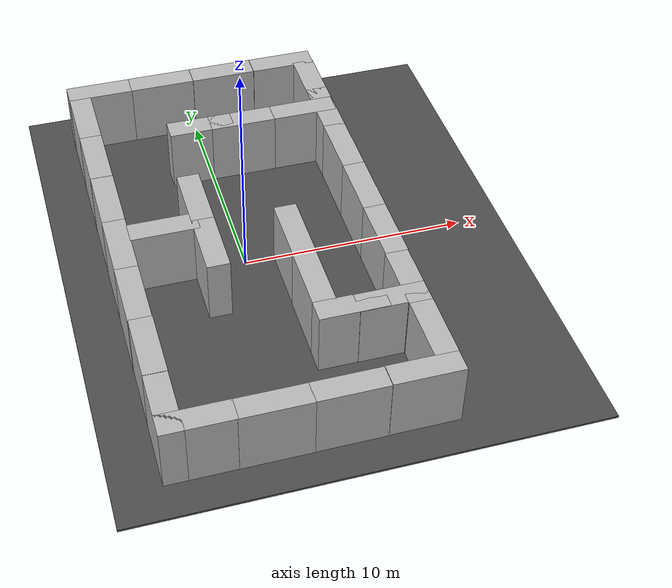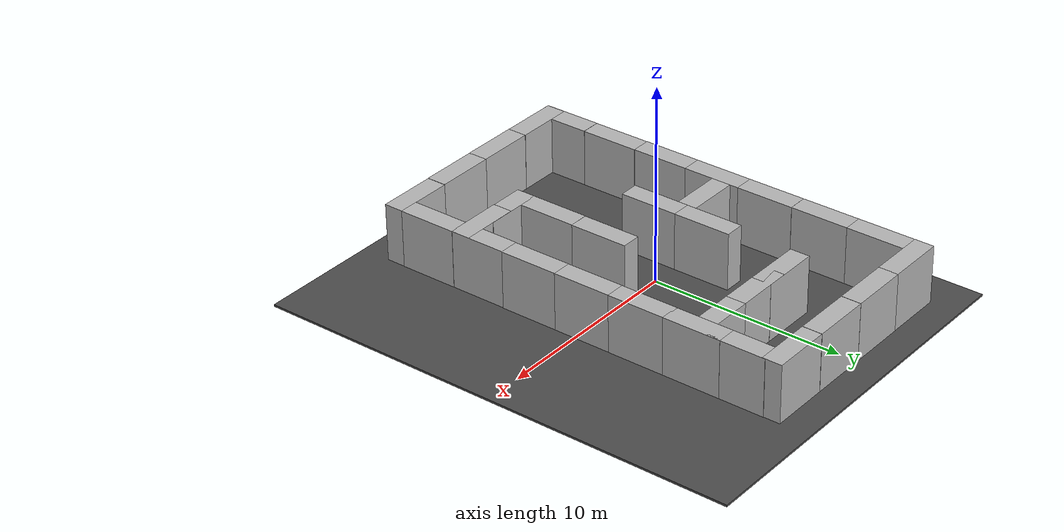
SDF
<sdf version="1.6">
 <world name="default">
  <light name="sun" type="directional">
   <pose>0 0 10 0 -0 0</pose>
   <diffuse>0.8 0.8 0.8 1</diffuse>
   <specular>0.2 0.2 0.2 1</specular>
   <attenuation>
    <range>1000</range>
    <constant>0.9</constant>
    <linear>0.01</linear>
    <quadratic>0.001</quadratic>
   </attenuation>
   <direction>-0.5 0.1 -0.9</direction>
  </light>
  <scene><ambient>0.4 0.4 0.4 1</ambient><background>0.7 0.7 0.7 1</background><shadows>1</shadows></scene>
  <spherical_coordinates>
   <surface_model>EARTH_WGS84</surface_model>
   <latitude_deg>0</latitude_deg>
   <longitude_deg>0</longitude_deg>
   <elevation>0</elevation>
   <heading_deg>0</heading_deg>
  </spherical_coordinates>
  <gravity>0 0 -9.8</gravity>
  <magnetic_field>6e-06 2.3e-05 -4.2e-05</magnetic_field>
  <atmosphere type="adiabatic"/>
  <audio><device>default</device></audio>
  <physics name="default_physics" default="0" type="ode">
   <max_step_size>0.001</max_step_size>
   <real_time_factor>1</real_time_factor>
   <real_time_update_rate>1000</real_time_update_rate>
  </physics>
  <model name="brick_box_3x1x3_0_clone_5_clone_5_clone_0_clone">
   <static>1</static>
   <link name="chassis">
    <pose>0 0 1.5 0 -0 0</pose>
    <collision name="collision"><geometry><box><size>3 1 3</size></box></geometry></collision>
    <visual name="visual">
     <geometry><mesh><uri>model://brick_box_3x1x3/meshes/simple_box.dae</uri><scale>3 1 3</scale></mesh></geometry>
     <material>
      <script>
       <uri>model://brick_box_3x1x3/materials/scripts</uri>
       <uri>model://brick_box_3x1x3/materials/textures</uri>
       <name>BrickBox/Diffuse</name>
      </script>
     </material>
    </visual>
    <velocity_decay><linear>0</linear><angular>0</angular></velocity_decay>
   </link>
   <pose>-4.5016 10.4636 0 0 -0 0</pose>
  </model>
  <model name="brick_box_3x1x3_14_clone_3_clone_clone_2">
   <static>1</static>
   <link name="chassis">
    <pose>0 0 1.5 0 -0 0</pose>
    <collision name="collision"><geometry><box><size>3 1 3</size></box></geometry></collision>
    <visual name="visual">
     <geometry><mesh><uri>model://brick_box_3x1x3/meshes/simple_box.dae</uri><scale>3 1 3</scale></mesh></geometry>
     <material>
      <script>
       <uri>model://brick_box_3x1x3/materials/scripts</uri>
       <uri>model://brick_box_3x1x3/materials/textures</uri>
       <name>BrickBox/Diffuse</name>
      </script>
     </material>
    </visual>
    <velocity_decay><linear>0</linear><angular>0</angular></velocity_decay>
   </link>
   <pose>5.50132 -2.58807 0 0 -0 1.57</pose>
  </model>
  <model name="brick_box_3x1x3_14_clone_3_clone_clone_7">
   <static>1</static>
   <link name="chassis">
    <pose>0 0 1.5 0 -0 0</pose>
    <collision name="collision"><geometry><box><size>3 1 3</size></box></geometry></collision>
    <visual name="visual">
     <geometry><mesh><uri>model://brick_box_3x1x3/meshes/simple_box.dae</uri><scale>3 1 3</scale></mesh></geometry>
     <material>
      <script>
       <uri>model://brick_box_3x1x3/materials/scripts</uri>
       <uri>model://brick_box_3x1x3/materials/textures</uri>
       <name>BrickBox/Diffuse</name>
      </script>
     </material>
    </visual>
    <velocity_decay><linear>0</linear><angular>0</angular></velocity_decay>
   </link>
   <pose>-5.49487 5.48229 0 0 -0 1.57</pose>
  </model>
  <model name="brick_box_3x1x3_14_clone_3_clone_clone_9">
   <static>1</static>
   <link name="chassis">
    <pose>0 0 1.5 0 -0 0</pose>
    <collision name="collision"><geometry><box><size>3 1 3</size></box></geometry></collision>
    <visual name="visual">
     <geometry><mesh><uri>model://brick_box_3x1x3/meshes/simple_box.dae</uri><scale>3 1 3</scale></mesh></geometry>
     <material>
      <script>
       <uri>model://brick_box_3x1x3/materials/scripts</uri>
       <uri>model://brick_box_3x1x3/materials/textures</uri>
       <name>BrickBox/Diffuse</name>
      </script>
     </material>
    </visual>
    <velocity_decay><linear>0</linear><angular>0</angular></velocity_decay>
   </link>
   <pose>-5.48506 -6.49247 0 0 -0 1.57</pose>
  </model>
  <model name="brick_box_3x1x3_0_clone_5_clone_5_clone_3_clone_3">
   <static>1</static>
   <link name="chassis">
    <pose>0 0 1.5 0 -0 0</pose>
    <collision name="collision"><geometry><box><size>3 1 3</size></box></geometry></collision>
    <visual name="visual">
     <geometry><mesh><uri>model://brick_box_3x1x3/meshes/simple_box.dae</uri><scale>3 1 3</scale></mesh></geometry>
     <material>
      <script>
       <uri>model://brick_box_3x1x3/materials/scripts</uri>
       <uri>model://brick_box_3x1x3/materials/textures</uri>
       <name>BrickBox/Diffuse</name>
      </script>
     </material>
    </visual>
    <velocity_decay><linear>0</linear><angular>0</angular></velocity_decay>
   </link>
   <pose>-4.48079 -10.5021 0 0 -0 0</pose>
  </model>
  <model name="brick_box_3x1x3_14_clone_3_clone_clone_7_clone">
   <static>1</static>
   <link name="chassis">
    <pose>0 0 1.5 0 -0 0</pose>
    <collision name="collision"><geometry><box><size>3 1 3</size></box></geometry></collision>
    <visual name="visual">
     <geometry><mesh><uri>model://brick_box_3x1x3/meshes/simple_box.dae</uri><scale>3 1 3</scale></mesh></geometry>
     <material>
      <script>
       <uri>model://brick_box_3x1x3/materials/scripts</uri>
       <uri>model://brick_box_3x1x3/materials/textures</uri>
       <name>BrickBox/Diffuse</name>
      </script>
     </material>
    </visual>
    <velocity_decay><linear>0</linear><angular>0</angular></velocity_decay>
   </link>
   <pose>-5.49218 2.47667 0 0 -0 1.57</pose>
  </model>
  <model name="brick_box_3x1x3_14_clone_3_clone_clone_7_clone_0">
   <static>1</static>
   <link name="chassis">
    <pose>0 0 1.5 0 -0 0</pose>
    <collision name="collision"><geometry><box><size>3 1 3</size></box></geometry></collision>
    <visual name="visual">
     <geometry><mesh><uri>model://brick_box_3x1x3/meshes/simple_box.dae</uri><scale>3 1 3</scale></mesh></geometry>
     <material>
      <script>
       <uri>model://brick_box_3x1x3/materials/scripts</uri>
       <uri>model://brick_box_3x1x3/materials/textures</uri>
       <name>BrickBox/Diffuse</name>
      </script>
     </material>
    </visual>
    <velocity_decay><linear>0</linear><angular>0</angular></velocity_decay>
   </link>
   <pose>-5.49411 -0.522681 0 0 -0 1.57</pose>
  </model>
  <model name="brick_box_3x1x3_14_clone_3_clone_clone_7_clone_1">
   <static>1</static>
   <link name="chassis">
    <pose>0 0 1.5 0 -0 0</pose>
    <collision name="collision"><geometry><box><size>3 1 3</size></box></geometry></collision>
    <visual name="visual">
     <geometry><mesh><uri>model://brick_box_3x1x3/meshes/simple_box.dae</uri><scale>3 1 3</scale></mesh></geometry>
     <material>
      <script>
       <uri>model://brick_box_3x1x3/materials/scripts</uri>
       <uri>model://brick_box_3x1x3/materials/textures</uri>
       <name>BrickBox/Diffuse</name>
      </script>
     </material>
    </visual>
    <velocity_decay><linear>0</linear><angular>0</angular></velocity_decay>
   </link>
   <pose>-5.49995 -3.5199 0 0 -0 1.57</pose>
  </model>
  <model name="brick_box_3x1x3_0_clone_5_clone_5_clone_0_clone_clone">
   <static>1</static>
   <link name="chassis">
    <pose>0 0 1.5 0 -0 0</pose>
    <collision name="collision"><geometry><box><size>3 1 3</size></box></geometry></collision>
    <visual name="visual">
     <geometry><mesh><uri>model://brick_box_3x1x3/meshes/simple_box.dae</uri><scale>3 1 3</scale></mesh></geometry>
     <material>
      <script>
       <uri>model://brick_box_3x1x3/materials/scripts</uri>
       <uri>model://brick_box_3x1x3/materials/textures</uri>
       <name>BrickBox/Diffuse</name>
      </script>
     </material>
    </visual>
    <velocity_decay><linear>0</linear><angular>0</angular></velocity_decay>
   </link>
   <pose>-1.51839 10.4717 0 0 -0 0</pose>
  </model>
  <model name="brick_box_3x1x3_0_clone_5_clone_5_clone_0_clone_clone_0">
   <static>1</static>
   <link name="chassis">
    <pose>0 0 1.5 0 -0 0</pose>
    <collision name="collision"><geometry><box><size>3 1 3</size></box></geometry></collision>
    <visual name="visual">
     <geometry><mesh><uri>model://brick_box_3x1x3/meshes/simple_box.dae</uri><scale>3 1 3</scale></mesh></geometry>
     <material>
      <script>
       <uri>model://brick_box_3x1x3/materials/scripts</uri>
       <uri>model://brick_box_3x1x3/materials/textures</uri>
       <name>BrickBox/Diffuse</name>
      </script>
     </material>
    </visual>
    <velocity_decay><linear>0</linear><angular>0</angular></velocity_decay>
   </link>
   <pose>1.48944 10.4732 0 0 -0 0</pose>
  </model>
  <model name="brick_box_3x1x3_0_clone_5_clone_5_clone_0_clone_clone_1">
   <static>1</static>
   <link name="chassis">
    <pose>0 0 1.5 0 -0 0</pose>
    <collision name="collision"><geometry><box><size>3 1 3</size></box></geometry></collision>
    <visual name="visual">
     <geometry><mesh><uri>model://brick_box_3x1x3/meshes/simple_box.dae</uri><scale>3 1 3</scale></mesh></geometry>
     <material>
      <script>
       <uri>model://brick_box_3x1x3/materials/scripts</uri>
       <uri>model://brick_box_3x1x3/materials/textures</uri>
       <name>BrickBox/Diffuse</name>
      </script>
     </material>
    </visual>
    <velocity_decay><linear>0</linear><angular>0</angular></velocity_decay>
   </link>
   <pose>4.50066 10.4708 0 0 -0 0</pose>
  </model>
  <model name="brick_box_3x1x3_0_clone_5_clone_5_clone_3_clone_3_clone">
   <static>1</static>
   <link name="chassis">
    <pose>0 0 1.5 0 -0 0</pose>
    <collision name="collision"><geometry><box><size>3 1 3</size></box></geometry></collision>
    <visual name="visual">
     <geometry><mesh><uri>model://brick_box_3x1x3/meshes/simple_box.dae</uri><scale>3 1 3</scale></mesh></geometry>
     <material>
      <script>
       <uri>model://brick_box_3x1x3/materials/scripts</uri>
       <uri>model://brick_box_3x1x3/materials/textures</uri>
       <name>BrickBox/Diffuse</name>
      </script>
     </material>
    </visual>
    <velocity_decay><linear>0</linear><angular>0</angular></velocity_decay>
   </link>
   <pose>-1.52381 -10.5094 0 0 -0 0</pose>
  </model>
  <model name="brick_box_3x1x3_0_clone_5_clone_5_clone_3_clone_3_clone_0">
   <static>1</static>
   <link name="chassis">
    <pose>0 0 1.5 0 -0 0</pose>
    <collision name="collision"><geometry><box><size>3 1 3</size></box></geometry></collision>
    <visual name="visual">
     <geometry><mesh><uri>model://brick_box_3x1x3/meshes/simple_box.dae</uri><scale>3 1 3</scale></mesh></geometry>
     <material>
      <script>
       <uri>model://brick_box_3x1x3/materials/scripts</uri>
       <uri>model://brick_box_3x1x3/materials/textures</uri>
       <name>BrickBox/Diffuse</name>
      </script>
     </material>
    </visual>
    <velocity_decay><linear>0</linear><angular>0</angular></velocity_decay>
   </link>
   <pose>1.45409 -10.4997 0 0 -0 0</pose>
  </model>
  <model name="brick_box_3x1x3_0_clone_5_clone_5_clone_3_clone_3_clone_1">
   <static>1</static>
   <link name="chassis">
    <pose>0 0 1.5 0 -0 0</pose>
    <collision name="collision"><geometry><box><size>3 1 3</size></box></geometry></collision>
    <visual name="visual">
     <geometry><mesh><uri>model://brick_box_3x1x3/meshes/simple_box.dae</uri><scale>3 1 3</scale></mesh></geometry>
     <material>
      <script>
       <uri>model://brick_box_3x1x3/materials/scripts</uri>
       <uri>model://brick_box_3x1x3/materials/textures</uri>
       <name>BrickBox/Diffuse</name>
      </script>
     </material>
    </visual>
    <velocity_decay><linear>0</linear><angular>0</angular></velocity_decay>
   </link>
   <pose>4.46891 -10.4811 0 0 -0 0</pose>
  </model>
  <model name="brick_box_3x1x3_0_clone_5_clone_5_clone_0_clone_clone_1_clone">
   <static>1</static>
   <link name="chassis">
    <pose>0 0 1.5 0 -0 0</pose>
    <collision name="collision"><geometry><box><size>3 1 3</size></box></geometry></collision>
    <visual name="visual">
     <geometry><mesh><uri>model://brick_box_3x1x3/meshes/simple_box.dae</uri><scale>3 1 3</scale></mesh></geometry>
     <material>
      <script>
       <uri>model://brick_box_3x1x3/materials/scripts</uri>
       <uri>model://brick_box_3x1x3/materials/textures</uri>
       <name>BrickBox/Diffuse</name>
      </script>
     </material>
    </visual>
    <velocity_decay><linear>0</linear><angular>0</angular></velocity_decay>
   </link>
   <pose>4.48184 6.50825 -0 0 -0 0</pose>
  </model>
  <model name="brick_box_3x1x3_14_clone_3_clone_clone_2_clone">
   <static>1</static>
   <link name="chassis">
    <pose>0 0 1.5 0 -0 0</pose>
    <collision name="collision"><geometry><box><size>3 1 3</size></box></geometry></collision>
    <visual name="visual">
     <geometry><mesh><uri>model://brick_box_3x1x3/meshes/simple_box.dae</uri><scale>3 1 3</scale></mesh></geometry>
     <material>
      <script>
       <uri>model://brick_box_3x1x3/materials/scripts</uri>
       <uri>model://brick_box_3x1x3/materials/textures</uri>
       <name>BrickBox/Diffuse</name>
      </script>
     </material>
    </visual>
    <velocity_decay><linear>0</linear><angular>0</angular></velocity_decay>
   </link>
   <pose>5.47635 -5.57779 0 0 -0 1.57</pose>
  </model>
  <model name="brick_box_3x1x3_14_clone_3_clone_clone_2_clone_0">
   <static>1</static>
   <link name="chassis">
    <pose>0 0 1.5 0 -0 0</pose>
    <collision name="collision"><geometry><box><size>3 1 3</size></box></geometry></collision>
    <visual name="visual">
     <geometry><mesh><uri>model://brick_box_3x1x3/meshes/simple_box.dae</uri><scale>3 1 3</scale></mesh></geometry>
     <material>
      <script>
       <uri>model://brick_box_3x1x3/materials/scripts</uri>
       <uri>model://brick_box_3x1x3/materials/textures</uri>
       <name>BrickBox/Diffuse</name>
      </script>
     </material>
    </visual>
    <velocity_decay><linear>0</linear><angular>0</angular></velocity_decay>
   </link>
   <pose>5.48205 -8.49527 0 0 -0 1.57</pose>
  </model>
  <model name="brick_box_3x1x3_14_clone_3_clone_clone_2_clone_1">
   <static>1</static>
   <link name="chassis">
    <pose>0 0 1.5 0 -0 0</pose>
    <collision name="collision"><geometry><box><size>3 1 3</size></box></geometry></collision>
    <visual name="visual">
     <geometry><mesh><uri>model://brick_box_3x1x3/meshes/simple_box.dae</uri><scale>3 1 3</scale></mesh></geometry>
     <material>
      <script>
       <uri>model://brick_box_3x1x3/materials/scripts</uri>
       <uri>model://brick_box_3x1x3/materials/textures</uri>
       <name>BrickBox/Diffuse</name>
      </script>
     </material>
    </visual>
    <velocity_decay><linear>0</linear><angular>0</angular></velocity_decay>
   </link>
   <pose>5.50681 0.395998 0 0 -0 1.57</pose>
  </model>
  <model name="brick_box_3x1x3_14_clone_3_clone_clone_2_clone_2">
   <static>1</static>
   <link name="chassis">
    <pose>0 0 1.5 0 -0 0</pose>
    <collision name="collision"><geometry><box><size>3 1 3</size></box></geometry></collision>
    <visual name="visual">
     <geometry><mesh><uri>model://brick_box_3x1x3/meshes/simple_box.dae</uri><scale>3 1 3</scale></mesh></geometry>
     <material>
      <script>
       <uri>model://brick_box_3x1x3/materials/scripts</uri>
       <uri>model://brick_box_3x1x3/materials/textures</uri>
       <name>BrickBox/Diffuse</name>
      </script>
     </material>
    </visual>
    <velocity_decay><linear>0</linear><angular>0</angular></velocity_decay>
   </link>
   <pose>5.51633 3.37553 0 0 -0 1.57</pose>
  </model>
  <model name="brick_box_3x1x3_0_clone_5_clone_5_clone_3_clone_3_clone_1_clone_clone">
   <static>1</static>
   <link name="chassis">
    <pose>0 0 1.5 0 -0 0</pose>
    <collision name="collision"><geometry><box><size>3 1 3</size></box></geometry></collision>
    <visual name="visual">
     <geometry><mesh><uri>model://brick_box_3x1x3/meshes/simple_box.dae</uri><scale>3 1 3</scale></mesh></geometry>
     <material>
      <script>
       <uri>model://brick_box_3x1x3/materials/scripts</uri>
       <uri>model://brick_box_3x1x3/materials/textures</uri>
       <name>BrickBox/Diffuse</name>
      </script>
     </material>
    </visual>
    <velocity_decay><linear>0</linear><angular>0</angular></velocity_decay>
   </link>
   <pose>-3.52501 0.047447 -0 0 -0 0</pose>
  </model>
  <model name="brick_box_3x1x3_0_clone_5_clone_5_clone_3_clone_3_clone_1_clone_clone_0">
   <static>1</static>
   <link name="chassis">
    <pose>0 0 1.5 0 -0 0</pose>
    <collision name="collision"><geometry><box><size>3 1 3</size></box></geometry></collision>
    <visual name="visual">
     <geometry><mesh><uri>model://brick_box_3x1x3/meshes/simple_box.dae</uri><scale>3 1 3</scale></mesh></geometry>
     <material>
      <script>
       <uri>model://brick_box_3x1x3/materials/scripts</uri>
       <uri>model://brick_box_3x1x3/materials/textures</uri>
       <name>BrickBox/Diffuse</name>
      </script>
     </material>
    </visual>
    <velocity_decay><linear>0</linear><angular>0</angular></velocity_decay>
   </link>
   <pose>4.47245 -6.5177 0 0 -0 0</pose>
  </model>
  <model name="brick_box_3x1x3_14_clone_3_clone_clone_2_clone_1_clone">
   <static>1</static>
   <link name="chassis">
    <pose>0 0 1.5 0 -0 0</pose>
    <collision name="collision"><geometry><box><size>3 1 3</size></box></geometry></collision>
    <visual name="visual">
     <geometry><mesh><uri>model://brick_box_3x1x3/meshes/simple_box.dae</uri><scale>3 1 3</scale></mesh></geometry>
     <material>
      <script>
       <uri>model://brick_box_3x1x3/materials/scripts</uri>
       <uri>model://brick_box_3x1x3/materials/textures</uri>
       <name>BrickBox/Diffuse</name>
      </script>
     </material>
    </visual>
    <velocity_decay><linear>0</linear><angular>0</angular></velocity_decay>
   </link>
   <pose>5.52122 6.31434 0 0 -0 1.57</pose>
  </model>
  <model name="brick_box_3x1x3_14_clone_3_clone_clone_2_clone_1_clone_0">
   <static>1</static>
   <link name="chassis">
    <pose>0 0 1.5 0 -0 0</pose>
    <collision name="collision"><geometry><box><size>3 1 3</size></box></geometry></collision>
    <visual name="visual">
     <geometry><mesh><uri>model://brick_box_3x1x3/meshes/simple_box.dae</uri><scale>3 1 3</scale></mesh></geometry>
     <material>
      <script>
       <uri>model://brick_box_3x1x3/materials/scripts</uri>
       <uri>model://brick_box_3x1x3/materials/textures</uri>
       <name>BrickBox/Diffuse</name>
      </script>
     </material>
    </visual>
    <velocity_decay><linear>0</linear><angular>0</angular></velocity_decay>
   </link>
   <pose>5.51909 8.62346 0 0 -0 1.57</pose>
  </model>
  <model name="brick_box_3x1x3_14_clone_3_clone_clone_9_clone">
   <static>1</static>
   <link name="chassis">
    <pose>0 0 1.5 0 -0 0</pose>
    <collision name="collision"><geometry><box><size>3 1 3</size></box></geometry></collision>
    <visual name="visual">
     <geometry><mesh><uri>model://brick_box_3x1x3/meshes/simple_box.dae</uri><scale>3 1 3</scale></mesh></geometry>
     <material>
      <script>
       <uri>model://brick_box_3x1x3/materials/scripts</uri>
       <uri>model://brick_box_3x1x3/materials/textures</uri>
       <name>BrickBox/Diffuse</name>
      </script>
     </material>
    </visual>
    <velocity_decay><linear>0</linear><angular>0</angular></velocity_decay>
   </link>
   <pose>-5.49507 -9.50518 0 0 -0 1.57</pose>
  </model>
  <model name="brick_box_3x1x3_14_clone_3_clone_clone_9_clone_0">
   <static>1</static>
   <link name="chassis">
    <pose>0 0 1.5 0 -0 0</pose>
    <collision name="collision"><geometry><box><size>3 1 3</size></box></geometry></collision>
    <visual name="visual">
     <geometry><mesh><uri>model://brick_box_3x1x3/meshes/simple_box.dae</uri><scale>3 1 3</scale></mesh></geometry>
     <material>
      <script>
       <uri>model://brick_box_3x1x3/materials/scripts</uri>
       <uri>model://brick_box_3x1x3/materials/textures</uri>
       <name>BrickBox/Diffuse</name>
      </script>
     </material>
    </visual>
    <velocity_decay><linear>0</linear><angular>0</angular></velocity_decay>
   </link>
   <pose>-5.49489 8.47821 0 0 -0 1.57</pose>
  </model>
  <model name="brick_box_3x1x3_14_clone_3_clone_clone_7_clone_1_clone">
   <static>1</static>
   <link name="chassis">
    <pose>0 0 1.5 0 -0 0</pose>
    <collision name="collision"><geometry><box><size>3 1 3</size></box></geometry></collision>
    <visual name="visual">
     <geometry><mesh><uri>model://brick_box_3x1x3/meshes/simple_box.dae</uri><scale>3 1 3</scale></mesh></geometry>
     <material>
      <script>
       <uri>model://brick_box_3x1x3/materials/scripts</uri>
       <uri>model://brick_box_3x1x3/materials/textures</uri>
       <name>BrickBox/Diffuse</name>
      </script>
     </material>
    </visual>
    <velocity_decay><linear>0</linear><angular>0</angular></velocity_decay>
   </link>
   <pose>1.77435 -4.54916 0 0 -0 1.57</pose>
  </model>
  <model name="brick_box_3x1x3_14_clone_3_clone_clone_7_clone_1_clone_0">
   <static>1</static>
   <link name="chassis">
    <pose>0 0 1.5 0 -0 0</pose>
    <collision name="collision"><geometry><box><size>3 1 3</size></box></geometry></collision>
    <visual name="visual">
     <geometry><mesh><uri>model://brick_box_3x1x3/meshes/simple_box.dae</uri><scale>3 1 3</scale></mesh></geometry>
     <material>
      <script>
       <uri>model://brick_box_3x1x3/materials/scripts</uri>
       <uri>model://brick_box_3x1x3/materials/textures</uri>
       <name>BrickBox/Diffuse</name>
      </script>
     </material>
    </visual>
    <velocity_decay><linear>0</linear><angular>0</angular></velocity_decay>
   </link>
   <pose>1.79152 -1.54503 0 0 -0 1.57</pose>
  </model>
  <model name="brick_box_3x1x3_14_clone_3_clone_clone_7_clone_1_clone_0_clone">
   <static>1</static>
   <link name="chassis">
    <pose>0 0 1.5 0 -0 0</pose>
    <collision name="collision"><geometry><box><size>3 1 3</size></box></geometry></collision>
    <visual name="visual">
     <geometry><mesh><uri>model://brick_box_3x1x3/meshes/simple_box.dae</uri><scale>3 1 3</scale></mesh></geometry>
     <material>
      <script>
       <uri>model://brick_box_3x1x3/materials/scripts</uri>
       <uri>model://brick_box_3x1x3/materials/textures</uri>
       <name>BrickBox/Diffuse</name>
      </script>
     </material>
    </visual>
    <velocity_decay><linear>0</linear><angular>0</angular></velocity_decay>
   </link>
   <pose>-1.81448 -1.42035 0 0 -0 1.57</pose>
  </model>
  <model name="brick_box_3x1x3_14_clone_3_clone_clone_7_clone_1_clone_0_clone_clone">
   <static>1</static>
   <link name="chassis">
    <pose>0 0 1.5 0 -0 0</pose>
    <collision name="collision"><geometry><box><size>3 1 3</size></box></geometry></collision>
    <visual name="visual">
     <geometry><mesh><uri>model://brick_box_3x1x3/meshes/simple_box.dae</uri><scale>3 1 3</scale></mesh></geometry>
     <material>
      <script>
       <uri>model://brick_box_3x1x3/materials/scripts</uri>
       <uri>model://brick_box_3x1x3/materials/textures</uri>
       <name>BrickBox/Diffuse</name>
      </script>
     </material>
    </visual>
    <velocity_decay><linear>0</linear><angular>0</angular></velocity_decay>
   </link>
   <pose>-1.80955 1.57373 0 0 -0 1.57</pose>
  </model>
  <model name="brick_box_3x1x3_0_clone_5_clone_5_clone_0_clone_clone_1_clone_clone">
   <static>1</static>
   <link name="chassis">
    <pose>0 0 1.5 0 -0 0</pose>
    <collision name="collision"><geometry><box><size>3 1 3</size></box></geometry></collision>
    <visual name="visual">
     <geometry><mesh><uri>model://brick_box_3x1x3/meshes/simple_box.dae</uri><scale>3 1 3</scale></mesh></geometry>
     <material>
      <script>
       <uri>model://brick_box_3x1x3/materials/scripts</uri>
       <uri>model://brick_box_3x1x3/materials/textures</uri>
       <name>BrickBox/Diffuse</name>
      </script>
     </material>
    </visual>
    <velocity_decay><linear>0</linear><angular>0</angular></velocity_decay>
   </link>
   <pose>1.50131 6.50655 0 0 -0 0</pose>
  </model>
  <model name="brick_box_3x1x3_0_clone_5_clone_5_clone_0_clone_clone_1_clone_clone_0">
   <static>1</static>
   <link name="chassis">
    <pose>0 0 1.5 0 -0 0</pose>
    <collision name="collision"><geometry><box><size>3 1 3</size></box></geometry></collision>
    <visual name="visual">
     <geometry><mesh><uri>model://brick_box_3x1x3/meshes/simple_box.dae</uri><scale>3 1 3</scale></mesh></geometry>
     <material>
      <script>
       <uri>model://brick_box_3x1x3/materials/scripts</uri>
       <uri>model://brick_box_3x1x3/materials/textures</uri>
       <name>BrickBox/Diffuse</name>
      </script>
     </material>
    </visual>
    <velocity_decay><linear>0</linear><angular>0</angular></velocity_decay>
   </link>
   <pose>-0.444394 6.50972 0 0 -0 0</pose>
  </model>
  <model name="brick_box_3x1x3_0_clone_5_clone_5_clone_3_clone_3_clone_1_clone_clone_0_clone">
   <static>1</static>
   <link name="chassis">
    <pose>0 0 1.5 0 -0 0</pose>
    <collision name="collision"><geometry><box><size>3 1 3</size></box></geometry></collision>
    <visual name="visual">
     <geometry><mesh><uri>model://brick_box_3x1x3/meshes/simple_box.dae</uri><scale>3 1 3</scale></mesh></geometry>
     <material>
      <script>
       <uri>model://brick_box_3x1x3/materials/scripts</uri>
       <uri>model://brick_box_3x1x3/materials/textures</uri>
       <name>BrickBox/Diffuse</name>
      </script>
     </material>
    </visual>
    <velocity_decay><linear>0</linear><angular>0</angular></velocity_decay>
   </link>
   <pose>2.7685 -6.50033 0 0 -0 0</pose>
  </model>
  <model name="asphalt_plane_clone_clone_clone_0_clone">
   <link name="link">
    <velocity_decay><linear>0</linear><angular>0</angular></velocity_decay>
    <inertial>
     <mass>1</mass>
     <inertia><ixx>1</ixx><ixy>0</ixy><ixz>0</ixz><iyy>1</iyy><iyz>0</iyz><izz>1</izz></inertia>
    </inertial>
    <visual name="visual">
     <cast_shadows>0</cast_shadows>
     <geometry><box><size>20 25 0.1</size></box></geometry>
     <material>
      <script>
       <uri>model://asphalt_plane/materials/scripts</uri>
       <uri>model://asphalt_plane/materials/textures</uri>
       <name>vrc/asphalt</name>
      </script>
      <shader type="vertex"><normal_map>__default__</normal_map></shader>
      <ambient>0.5 0.5 0.5 1</ambient>
      <diffuse>0.5 0.5 0.5 1</diffuse>
      <specular>0.2 0.2 0.2 1</specular>
      <emissive>0 0 0 1</emissive>
     </material>
    </visual>
    <collision name="collision">
     <geometry><box><size>20 25 0.1</size></box></geometry>
     <surface>
      <friction>
       <ode><mu>1</mu><mu2>1</mu2><fdir1>0 0 0</fdir1><slip1>0</slip1><slip2>0</slip2></ode>
       <torsional>
        <coefficient>1</coefficient>
        <patch_radius>0</patch_radius>
        <surface_radius>0</surface_radius>
        <use_patch_radius>1</use_patch_radius>
        <ode><slip>0</slip></ode>
       </torsional>
      </friction>
      <bounce><restitution_coefficient>0</restitution_coefficient><threshold>1e+06</threshold></bounce>
      <contact>
       <collide_without_contact>0</collide_without_contact>
       <collide_without_contact_bitmask>1</collide_without_contact_bitmask>
       <collide_bitmask>1</collide_bitmask>
       <ode>
        <soft_cfm>0</soft_cfm>
        <soft_erp>0.2</soft_erp>
        <kp>1e+13</kp>
        <kd>1</kd>
        <max_vel>0.01</max_vel>
        <min_depth>0</min_depth>
       </ode>
       <bullet>
        <split_impulse>1</split_impulse>
        <split_impulse_penetration_threshold>-0.01</split_impulse_penetration_threshold>
        <soft_cfm>0</soft_cfm>
        <soft_erp>0.2</soft_erp>
        <kp>1e+13</kp>
        <kd>1</kd>
       </bullet>
      </contact>
     </surface>
    </collision>
   </link>
   <static>1</static>
   <pose>2 0 0 0 -0 0</pose>
  </model>
 </world>
</sdf>
